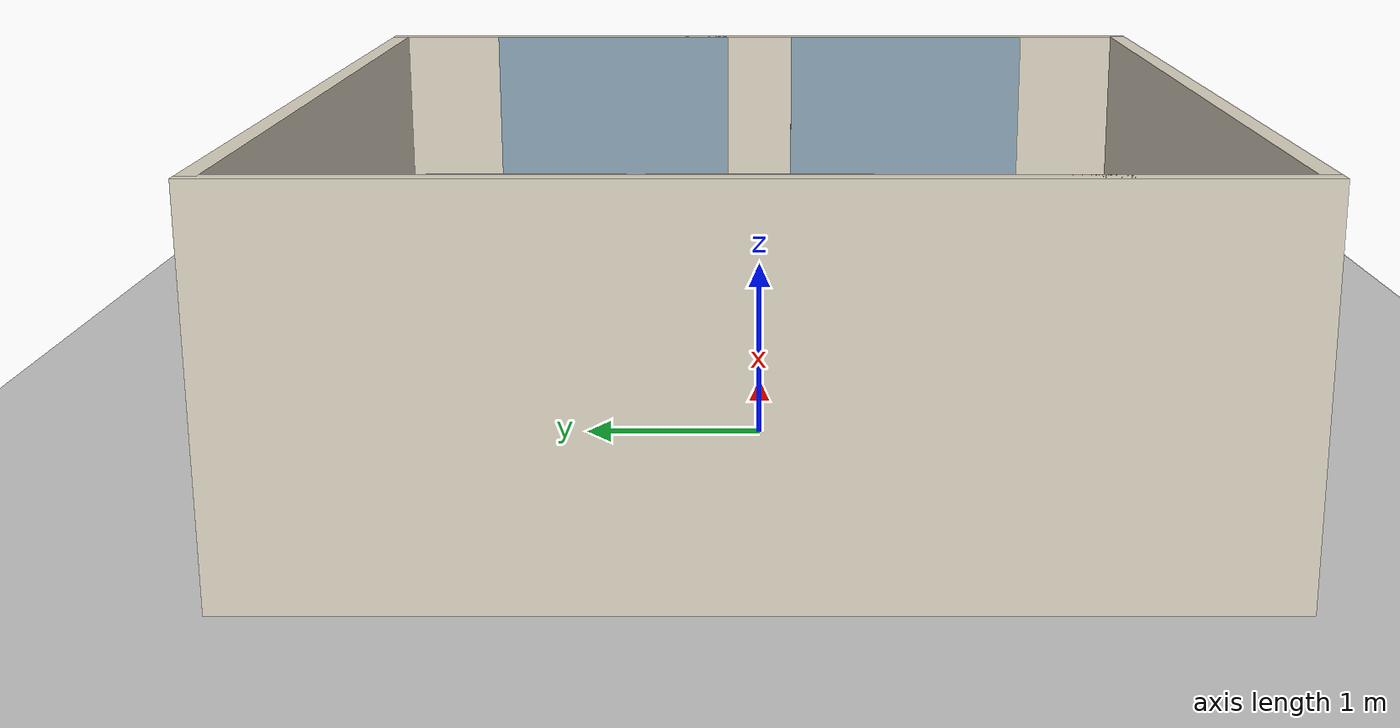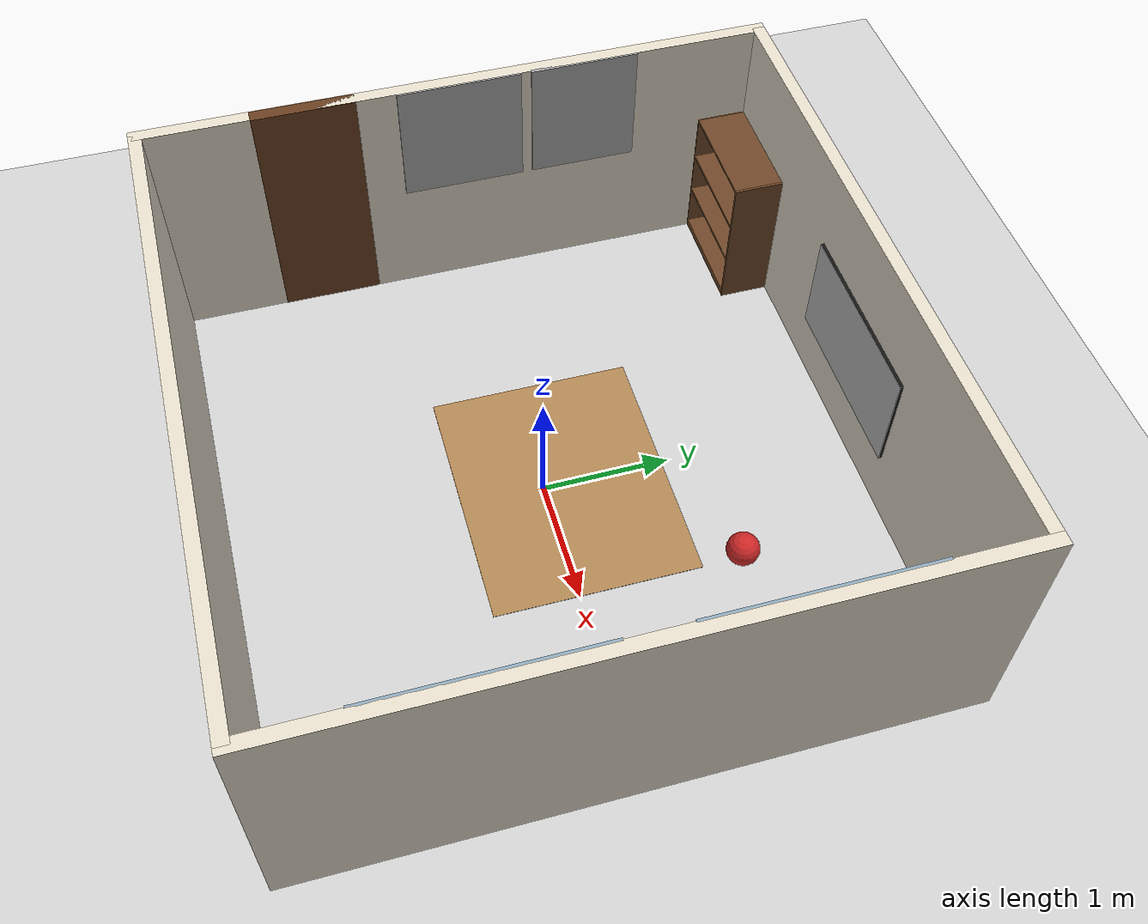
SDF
<sdf version="1.7">
 <world name="default">
  <plugin filename="gz-sim-physics-system" name="gz::sim::systems::Physics"/>
  <plugin filename="gz-sim-sensors-system" name="gz::sim::systems::Sensors">
   <render_engine>ogre2</render_engine>
  </plugin>
  <plugin filename="gz-sim-imu-system" name="gz::sim::systems::Imu"/>
  <plugin filename="gz-sim-contact-system" name="gz::sim::systems::Contact"/>
  <plugin filename="gz-sim-user-commands-system" name="gz::sim::systems::UserCommands"/>
  <plugin filename="gz-sim-scene-broadcaster-system" name="gz::sim::systems::SceneBroadcaster"/>
  <plugin filename="gz-sim-air-pressure-system" name="gz::sim::systems::AirPressure"/>
  <light name="sun" type="directional">
   <pose>0 0 10 0 -0 0</pose>
   <diffuse>0.8 0.8 0.8 1</diffuse>
   <specular>0.2 0.2 0.2 1</specular>
   <attenuation>
    <range>1000</range>
    <constant>0.9</constant>
    <linear>0.01</linear>
    <quadratic>0.001</quadratic>
   </attenuation>
   <direction>-0.5 0.1 -0.9</direction>
   <spot><inner_angle>0</inner_angle><outer_angle>0</outer_angle><falloff>0</falloff></spot>
  </light>
  <model name="ground_plane">
   <static>1</static>
   <link name="link">
    <collision name="collision">
     <geometry><plane><normal>0 0 1</normal><size>100 100</size></plane></geometry>
     <surface>
      <contact><collide_bitmask>65535</collide_bitmask></contact>
      <friction><ode><mu>100</mu><mu2>50</mu2></ode></friction>
     </surface>
    </collision>
    <visual name="visual">
     <cast_shadows>0</cast_shadows>
     <geometry><plane><normal>0 0 1</normal><size>1 1</size></plane></geometry>
     <material>
      <script><uri>file://media/materials/scripts/gazebo.material</uri><name>Gazebo/Grey</name></script>
     </material>
    </visual>
   </link>
  </model>
  <gravity>0 0 -9.8</gravity>
  <magnetic_field>6e-06 2.3e-05 -4.2e-05</magnetic_field>
  <atmosphere type="adiabatic"/>
  <physics type="ode">
   <max_step_size>0.001</max_step_size>
   <real_time_factor>1</real_time_factor>
   <real_time_update_rate>1000</real_time_update_rate>
  </physics>
  <scene><ambient>0.4 0.4 0.4 1</ambient><background>0.7 0.7 0.7 1</background><shadows>1</shadows></scene>
  <audio><device>default</device></audio>
  <spherical_coordinates>
   <surface_model>EARTH_WGS84</surface_model>
   <latitude_deg>0</latitude_deg>
   <longitude_deg>0</longitude_deg>
   <elevation>0</elevation>
   <heading_deg>0</heading_deg>
  </spherical_coordinates>
  <model name="bookshelf">
   <static>1</static>
   <link name="link">
    <inertial><mass>1</mass></inertial>
    <collision name="back">
     <pose>0 0.005 0.6 0 -0 0</pose>
     <geometry><box><size>0.9 0.01 1.2</size></box></geometry>
    </collision>
    <visual name="visual1">
     <pose>0 0.005 0.6 0 -0 0</pose>
     <geometry><box><size>0.9 0.01 1.2</size></box></geometry>
     <material>
      <ambient>0.32 0.20 0.11 1</ambient>
      <diffuse>0.42 0.27 0.15 1</diffuse>
      <specular>0.1 0.1 0.1 1</specular>
     </material>
    </visual>
    <collision name="left_side">
     <pose>0.45 -0.195 0.6 0 -0 0</pose>
     <geometry><box><size>0.02 0.4 1.2</size></box></geometry>
    </collision>
    <visual name="visual2">
     <pose>0.45 -0.195 0.6 0 -0 0</pose>
     <geometry><box><size>0.02 0.4 1.2</size></box></geometry>
     <material>
      <ambient>0.32 0.20 0.11 1</ambient>
      <diffuse>0.42 0.27 0.15 1</diffuse>
      <specular>0.1 0.1 0.1 1</specular>
     </material>
    </visual>
    <collision name="right_side">
     <pose>-0.45 -0.195 0.6 0 -0 0</pose>
     <geometry><box><size>0.02 0.4 1.2</size></box></geometry>
    </collision>
    <visual name="visual3">
     <pose>-0.45 -0.195 0.6 0 -0 0</pose>
     <geometry><box><size>0.02 0.4 1.2</size></box></geometry>
     <material>
      <ambient>0.32 0.20 0.11 1</ambient>
      <diffuse>0.42 0.27 0.15 1</diffuse>
      <specular>0.1 0.1 0.1 1</specular>
     </material>
    </visual>
    <collision name="bottom">
     <pose>0 -0.195 0.03 0 -0 0</pose>
     <geometry><box><size>0.88 0.4 0.06</size></box></geometry>
    </collision>
    <visual name="visual4">
     <pose>0 -0.195 0.03 0 -0 0</pose>
     <geometry><box><size>0.88 0.4 0.06</size></box></geometry>
     <material>
      <ambient>0.32 0.20 0.11 1</ambient>
      <diffuse>0.42 0.27 0.15 1</diffuse>
      <specular>0.1 0.1 0.1 1</specular>
     </material>
    </visual>
    <collision name="top">
     <pose>0 -0.195 1.19 0 -0 0</pose>
     <geometry><box><size>0.88 0.4 0.02</size></box></geometry>
    </collision>
    <visual name="visual5">
     <pose>0 -0.195 1.19 0 -0 0</pose>
     <geometry><box><size>0.88 0.4 0.02</size></box></geometry>
     <material>
      <ambient>0.32 0.20 0.11 1</ambient>
      <diffuse>0.42 0.27 0.15 1</diffuse>
      <specular>0.1 0.1 0.1 1</specular>
     </material>
    </visual>
    <collision name="low_shelf">
     <pose>0 -0.195 0.43 0 -0 0</pose>
     <geometry><box><size>0.88 0.4 0.02</size></box></geometry>
    </collision>
    <visual name="visual6">
     <pose>0 -0.195 0.43 0 -0 0</pose>
     <geometry><box><size>0.88 0.4 0.02</size></box></geometry>
     <material>
      <ambient>0.32 0.20 0.11 1</ambient>
      <diffuse>0.42 0.27 0.15 1</diffuse>
      <specular>0.1 0.1 0.1 1</specular>
     </material>
    </visual>
    <collision name="high_shelf">
     <pose>0 -0.195 0.8 0 -0 0</pose>
     <geometry><box><size>0.88 0.4 0.02</size></box></geometry>
    </collision>
    <visual name="visual7">
     <pose>0 -0.195 0.8 0 -0 0</pose>
     <geometry><box><size>0.88 0.4 0.02</size></box></geometry>
     <material>
      <ambient>0.32 0.20 0.11 1</ambient>
      <diffuse>0.42 0.27 0.15 1</diffuse>
      <specular>0.1 0.1 0.1 1</specular>
     </material>
    </visual>
   </link>
   <pose>-2 2.4 0 0 -0 0</pose>
  </model>
  <model name="cabinet">
   <static>1</static>
   <link name="cabinet_bottom_plate">
    <inertial>
     <pose>0 0 -1 0 -0 0</pose>
     <inertia><ixx>2.05</ixx><ixy>0</ixy><ixz>0</ixz><iyy>2.05</iyy><iyz>0</iyz><izz>2.05</izz></inertia>
     <mass>25</mass>
    </inertial>
    <collision name="cabinet_bottom_plate_geom">
     <pose>0 0 0.01 0 -0 0</pose>
     <geometry><box><size>0.45 0.45 0.02</size></box></geometry>
    </collision>
    <visual name="cabinet_bottom_plate_geom_visual">
     <pose>0 0 0.01 0 -0 0</pose>
     <geometry><box><size>0.45 0.45 0.02</size></box></geometry>
     <material>
      <script><uri>file://media/materials/scripts/gazebo.material</uri><name>Gazebo/Wood</name></script>
     </material>
    </visual>
    <collision name="cabinet_bottom_plate_geom_cabinet_back_plate">
     <pose>0.235 0 0.51 0 -0 0</pose>
     <geometry><box><size>0.02 0.45 1.02</size></box></geometry>
    </collision>
    <visual name="cabinet_bottom_plate_geom_cabinet_back_plate_visual">
     <pose>0.235 0 0.51 0 -0 0</pose>
     <geometry><box><size>0.02 0.45 1.02</size></box></geometry>
     <material>
      <script><uri>file://media/materials/scripts/gazebo.material</uri><name>Gazebo/Wood</name></script>
     </material>
    </visual>
    <collision name="cabinet_bottom_plate_geom_cabinet_left_plate">
     <pose>0 0.235 0.51 0 -0 0</pose>
     <geometry><box><size>0.45 0.02 1.02</size></box></geometry>
    </collision>
    <visual name="cabinet_bottom_plate_geom_cabinet_left_plate_visual">
     <pose>0 0.235 0.51 0 -0 0</pose>
     <geometry><box><size>0.45 0.02 1.02</size></box></geometry>
     <material>
      <script><uri>file://media/materials/scripts/gazebo.material</uri><name>Gazebo/Wood</name></script>
     </material>
    </visual>
    <collision name="cabinet_bottom_plate_geom_cabinet_middle_plate">
     <pose>0 0 0.51 0 -0 0</pose>
     <geometry><box><size>0.45 0.45 0.02</size></box></geometry>
    </collision>
    <visual name="cabinet_bottom_plate_geom_cabinet_middle_plate_visual">
     <pose>0 0 0.51 0 -0 0</pose>
     <geometry><box><size>0.45 0.45 0.02</size></box></geometry>
     <material>
      <script><uri>file://media/materials/scripts/gazebo.material</uri><name>Gazebo/Wood</name></script>
     </material>
    </visual>
    <collision name="cabinet_bottom_plate_geom_cabinet_right_plate">
     <pose>0 -0.235 0.51 0 -0 0</pose>
     <geometry><box><size>0.45 0.02 1.02</size></box></geometry>
    </collision>
    <visual name="cabinet_bottom_plate_geom_cabinet_right_plate_visual">
     <pose>0 -0.235 0.51 0 -0 0</pose>
     <geometry><box><size>0.45 0.02 1.02</size></box></geometry>
     <material>
      <script><uri>file://media/materials/scripts/gazebo.material</uri><name>Gazebo/Wood</name></script>
     </material>
    </visual>
    <collision name="cabinet_bottom_plate_geom_cabinet_top_plate">
     <pose>0 0 1.01 0 -0 0</pose>
     <geometry><box><size>0.45 0.45 0.02</size></box></geometry>
    </collision>
    <visual name="cabinet_bottom_plate_geom_cabinet_top_plate_visual">
     <pose>0 0 1.01 0 -0 0</pose>
     <geometry><box><size>0.45 0.45 0.02</size></box></geometry>
     <material>
      <script><uri>file://media/materials/scripts/gazebo.material</uri><name>Gazebo/Wood</name></script>
     </material>
    </visual>
   </link>
   <pose>2.21 2.17 0 0 -0 1.5707</pose>
  </model>
  <model name="poster_2">
   <link name="link">
    <visual name="visual">
     <geometry><box><size>0.03 0.85714 1</size></box></geometry>
     <material>
      <ambient>0.55 0.55 0.55 1</ambient>
      <diffuse>0.65 0.65 0.65 1</diffuse>
      <specular>0.1 0.1 0.1 1</specular>
     </material>
    </visual>
   </link>
   <static>1</static>
   <pose>-2.45 1 1.5 0 -0 0</pose>
  </model>
  <model name="poster_1">
   <link name="link">
    <visual name="visual">
     <geometry><box><size>0.03 0.9782 1</size></box></geometry>
     <material>
      <ambient>0.55 0.55 0.55 1</ambient>
      <diffuse>0.65 0.65 0.65 1</diffuse>
      <specular>0.1 0.1 0.1 1</specular>
     </material>
    </visual>
   </link>
   <static>1</static>
   <pose>-2.45 0 1.5 0 -0 0</pose>
  </model>
  <model name="door_0">
   <link name="link">
    <visual name="visual">
     <geometry><box><size>0.1 0.8 2</size></box></geometry>
     <material>
      <ambient>0.30 0.18 0.09 1</ambient>
      <diffuse>0.40 0.24 0.12 1</diffuse>
      <specular>0.1 0.1 0.1 1</specular>
     </material>
    </visual>
   </link>
   <static>1</static>
   <pose>-2.495 -1.2 1 0 -0 0</pose>
  </model>
  <model name="room_wall_2x5">
   <link name="link">
    <visual name="visual">
     <geometry><box><size>0.1 5 2</size></box></geometry>
     <material>
      <ambient>0.78 0.75 0.68 1</ambient>
      <diffuse>0.88 0.85 0.78 1</diffuse>
      <specular>0.1 0.1 0.1 1</specular>
     </material>
    </visual>
    <collision name="collision"><geometry><box><size>0.1 5 2</size></box></geometry></collision>
   </link>
   <static>1</static>
   <pose>-2.5 0 1 0 -0 0</pose>
  </model>
  <model name="room_wall_2x5_0">
   <link name="link">
    <visual name="visual">
     <geometry><box><size>0.1 5 2</size></box></geometry>
     <material>
      <ambient>0.78 0.75 0.68 1</ambient>
      <diffuse>0.88 0.85 0.78 1</diffuse>
      <specular>0.1 0.1 0.1 1</specular>
     </material>
    </visual>
    <collision name="collision"><geometry><box><size>0.1 5 2</size></box></geometry></collision>
   </link>
   <static>1</static>
   <pose>2.5 0 1 0 -0 0</pose>
  </model>
  <model name="room_wall_2x5_1">
   <link name="link">
    <visual name="visual">
     <geometry><box><size>0.1 5 2</size></box></geometry>
     <material>
      <ambient>0.78 0.75 0.68 1</ambient>
      <diffuse>0.88 0.85 0.78 1</diffuse>
      <specular>0.1 0.1 0.1 1</specular>
     </material>
    </visual>
    <collision name="collision"><geometry><box><size>0.1 5 2</size></box></geometry></collision>
   </link>
   <static>1</static>
   <pose>0 -2.45 1 0 -0 1.5707</pose>
  </model>
  <model name="room_wall_2x5_2">
   <link name="link">
    <visual name="visual">
     <geometry><box><size>0.1 5 2</size></box></geometry>
     <material>
      <ambient>0.78 0.75 0.68 1</ambient>
      <diffuse>0.88 0.85 0.78 1</diffuse>
      <specular>0.1 0.1 0.1 1</specular>
     </material>
    </visual>
    <collision name="collision"><geometry><box><size>0.1 5 2</size></box></geometry></collision>
   </link>
   <static>1</static>
   <pose>0 2.45 1 0 -0 1.5707</pose>
  </model>
  <model name="rug_0">
   <link name="link">
    <visual name="visual">
     <geometry><box><size>1.6 2 0.005</size></box></geometry>
     <material>
      <ambient>0.55 0.42 0.25 1</ambient>
      <diffuse>0.68 0.52 0.32 1</diffuse>
      <specular>0.1 0.1 0.1 1</specular>
     </material>
    </visual>
   </link>
   <static>1</static>
   <pose>0 0.15 0 0 -0 1.5707</pose>
  </model>
  <model name="window_curtains">
   <link name="link">
    <visual name="visual">
     <geometry><box><size>0.02 1.5676 2</size></box></geometry>
     <material>
      <ambient>0.45 0.55 0.62 1</ambient>
      <diffuse>0.55 0.65 0.72 1</diffuse>
      <specular>0.1 0.1 0.1 1</specular>
     </material>
    </visual>
   </link>
   <static>1</static>
   <pose>2.45 1 1 0 -0 0</pose>
  </model>
  <model name="window_curtains_0">
   <link name="link">
    <visual name="visual">
     <geometry><box><size>0.02 1.5676 2</size></box></geometry>
     <material>
      <ambient>0.45 0.55 0.62 1</ambient>
      <diffuse>0.55 0.65 0.72 1</diffuse>
      <specular>0.1 0.1 0.1 1</specular>
     </material>
    </visual>
   </link>
   <static>1</static>
   <pose>2.45 -1 1 0 -0 0</pose>
  </model>
  <model name="red_ball_10in">
   <pose>1 1.25 0.127 0 -0 0</pose>
   <link name="link">
    <inertial>
     <mass>0.213</mass>
     <inertia>
      <ixx>0.00322667</ixx>
      <ixy>0</ixy>
      <ixz>0</ixz>
      <iyy>0.00322667</iyy>
      <iyz>0</iyz>
      <izz>0.00322667</izz>
     </inertia>
    </inertial>
    <visual name="visual">
     <geometry><sphere><radius>0.127</radius></sphere></geometry>
     <material>
      <script><uri>file://media/materials/scripts/gazebo.material</uri><name>Gazebo/Red</name></script>
     </material>
    </visual>
    <collision name="collision">
     <geometry><sphere><radius>0.127</radius></sphere></geometry>
     <surface>
      <bounce><restitution_coefficient>0.15937</restitution_coefficient><threshold>0</threshold></bounce>
      <contact><ode><max_vel>100</max_vel><min_depth>0.001</min_depth></ode></contact>
     </surface>
    </collision>
   </link>
  </model>
  <model name="tv">
   <link name="link">
    <visual name="visual_screen">
     <pose>-0.026 0 0 0 -0 0</pose>
     <geometry><box><size>0.002 1.45 0.83</size></box></geometry>
     <material>
      <pbr><metal><emissive_map>model://tv/textures/tv_screen.jpg</emissive_map></metal></pbr>
      <emissive>1 1 1 1</emissive>
     </material>
    </visual>
    <visual name="visual_body">
     <pose>0.001 0 0 0 -0 0</pose>
     <geometry><box><size>0.048 1.45 0.83</size></box></geometry>
     <material>
      <ambient>0.05 0.05 0.05 1</ambient>
      <diffuse>0.08 0.08 0.08 1</diffuse>
      <specular>0.2 0.2 0.2 1</specular>
     </material>
    </visual>
   </link>
   <static>1</static>
   <pose>0 2.4 0.9 0 -0 1.5707</pose>
  </model>
 </world>
</sdf>
